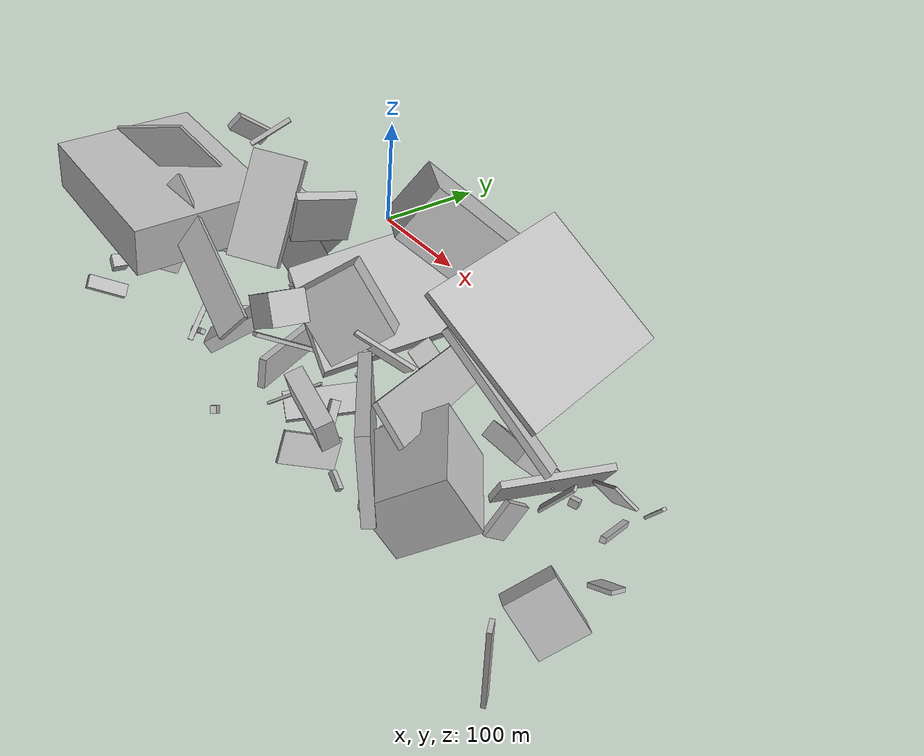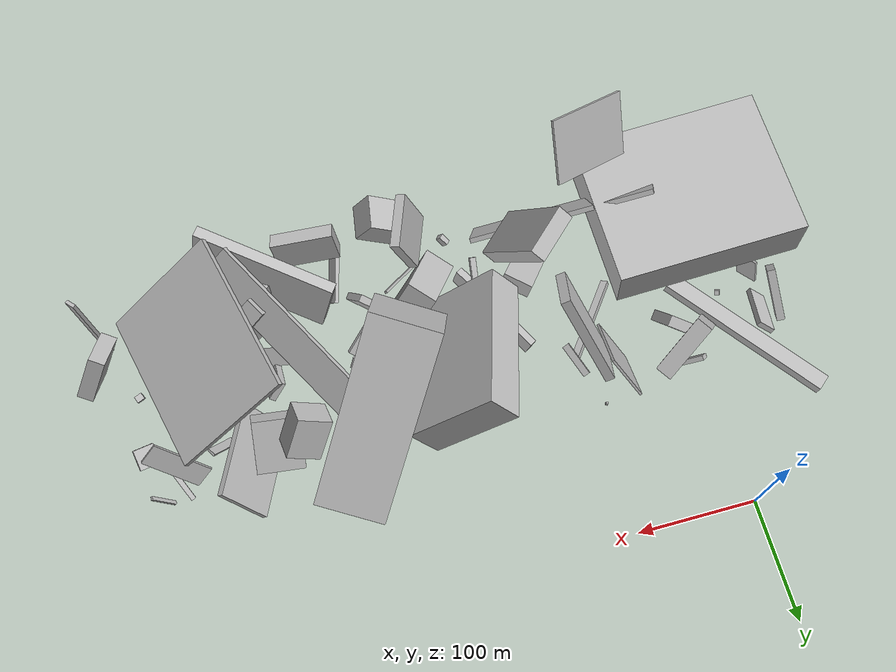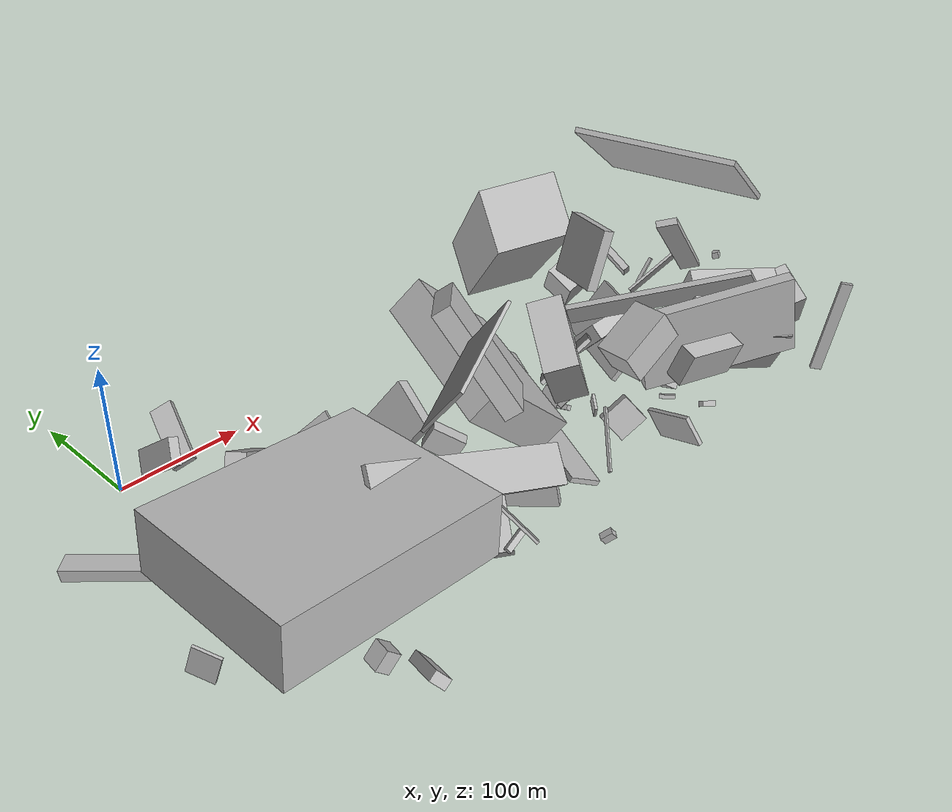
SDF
<sdf version="1.6">
 <world name="default">
  <model name="building_2">
   <static>0</static>
   <pose>387.47691240882835 -232.77425235303443 61.18344624210831 0.5333309283170092 0.0370196419224653 -0.6642562123319025</pose>
   <link name="link">
    <gravity>0</gravity>
    <pose>0 0 24.0 0 0 0</pose>
    <collision name="collision"><geometry><box><size>65 58 48</size></box></geometry></collision>
    <visual name="visual">
     <cast_shadows>0</cast_shadows>
     <geometry><box><size>65 58 48</size></box></geometry>
     <material>
      <script>
       <uri>model://HANNAS_wall/materials/scripts</uri>
       <uri>model://HANNAS_wall/materials/textures</uri>
       <name>vrc/HANNAS_wall</name>
      </script>
     </material>
    </visual>
   </link>
  </model>
  <model name="building_8">
   <static>0</static>
   <pose>345.8888367723806 -257.60691258758914 63.351803148838925 0.0902114704054743 -0.20962358882046353 -0.6115045855052065</pose>
   <link name="link">
    <gravity>0</gravity>
    <pose>0 0 31.0 0 0 0</pose>
    <collision name="collision"><geometry><box><size>113 9 62</size></box></geometry></collision>
    <visual name="visual">
     <cast_shadows>0</cast_shadows>
     <geometry><box><size>113 9 62</size></box></geometry>
     <material>
      <script>
       <uri>model://HANNAS_wall/materials/scripts</uri>
       <uri>model://HANNAS_wall/materials/textures</uri>
       <name>vrc/HANNAS_wall</name>
      </script>
     </material>
    </visual>
   </link>
  </model>
  <model name="building_9">
   <static>0</static>
   <pose>272.92304885389206 -124.40356035833818 121.81456329137009 0.6888763508246173 0.15438052560395862 2.6262330043297193</pose>
   <link name="link">
    <gravity>0</gravity>
    <pose>0 0 22.0 0 0 0</pose>
    <collision name="collision"><geometry><box><size>53 150 44</size></box></geometry></collision>
    <visual name="visual">
     <cast_shadows>0</cast_shadows>
     <geometry><box><size>53 150 44</size></box></geometry>
     <material>
      <script>
       <uri>model://HANNAS_wall/materials/scripts</uri>
       <uri>model://HANNAS_wall/materials/textures</uri>
       <name>vrc/HANNAS_wall</name>
      </script>
     </material>
    </visual>
   </link>
  </model>
  <model name="building_10">
   <static>0</static>
   <pose>331.76769654741463 -203.73249671786567 100.63112434152454 0.4676449679763307 -0.7483035096177024 -2.924746968950336</pose>
   <link name="link">
    <gravity>0</gravity>
    <pose>0 0 2.0 0 0 0</pose>
    <collision name="collision"><geometry><box><size>31 150 4</size></box></geometry></collision>
    <visual name="visual">
     <cast_shadows>0</cast_shadows>
     <geometry><box><size>31 150 4</size></box></geometry>
     <material>
      <script>
       <uri>model://HANNAS_wall/materials/scripts</uri>
       <uri>model://HANNAS_wall/materials/textures</uri>
       <name>vrc/HANNAS_wall</name>
      </script>
     </material>
    </visual>
   </link>
  </model>
  <model name="building_12">
   <static>0</static>
   <pose>159.26316855926473 -209.3865946689082 25.733481319758745 1.5601258000710014 -1.3874925622981942 2.1170049912540003</pose>
   <link name="link">
    <gravity>0</gravity>
    <pose>0 0 3.0 0 0 0</pose>
    <collision name="collision"><geometry><box><size>24 87 6</size></box></geometry></collision>
    <visual name="visual">
     <cast_shadows>0</cast_shadows>
     <geometry><box><size>24 87 6</size></box></geometry>
     <material>
      <script>
       <uri>model://HANNAS_wall/materials/scripts</uri>
       <uri>model://HANNAS_wall/materials/textures</uri>
       <name>vrc/HANNAS_wall</name>
      </script>
     </material>
    </visual>
   </link>
  </model>
  <model name="building_17">
   <static>0</static>
   <pose>193.70871926552255 -146.8150998121074 68.54899901740694 0.7487934997552398 -0.20692695145643705 1.2775613620409565</pose>
   <link name="link">
    <gravity>0</gravity>
    <pose>0 0 15.5 0 0 0</pose>
    <collision name="collision"><geometry><box><size>118 82 31</size></box></geometry></collision>
    <visual name="visual">
     <cast_shadows>0</cast_shadows>
     <geometry><box><size>118 82 31</size></box></geometry>
     <material>
      <script>
       <uri>model://HANNAS_wall/materials/scripts</uri>
       <uri>model://HANNAS_wall/materials/textures</uri>
       <name>vrc/HANNAS_wall</name>
      </script>
     </material>
    </visual>
   </link>
  </model>
  <model name="building_18">
   <static>0</static>
   <pose>104.79416934999136 -142.50146671710775 73.63118417303832 -2.4351214966518304 0.9421025663159311 2.1706856656243505</pose>
   <link name="link">
    <gravity>0</gravity>
    <pose>0 0 17.5 0 0 0</pose>
    <collision name="collision"><geometry><box><size>94 8 35</size></box></geometry></collision>
    <visual name="visual">
     <cast_shadows>0</cast_shadows>
     <geometry><box><size>94 8 35</size></box></geometry>
     <material>
      <script>
       <uri>model://HANNAS_wall/materials/scripts</uri>
       <uri>model://HANNAS_wall/materials/textures</uri>
       <name>vrc/HANNAS_wall</name>
      </script>
     </material>
    </visual>
   </link>
  </model>
  <model name="building_24">
   <static>0</static>
   <pose>-37.57711728249996 -135.03972867335196 31.527295860020246 1.0150946047471558 -1.465987361438521 2.8180148281602126</pose>
   <link name="link">
    <gravity>0</gravity>
    <pose>0 0 7.0 0 0 0</pose>
    <collision name="collision"><geometry><box><size>9 150 14</size></box></geometry></collision>
    <visual name="visual">
     <cast_shadows>0</cast_shadows>
     <geometry><box><size>9 150 14</size></box></geometry>
     <material>
      <script>
       <uri>model://HANNAS_wall/materials/scripts</uri>
       <uri>model://HANNAS_wall/materials/textures</uri>
       <name>vrc/HANNAS_wall</name>
      </script>
     </material>
    </visual>
   </link>
  </model>
  <model name="building_25">
   <static>0</static>
   <pose>22.72459754273749 -157.43585097709703 28.922503526487564 0.5013023883560919 0.5685327370787435 2.7574304789780997</pose>
   <link name="link">
    <gravity>0</gravity>
    <pose>0 0 12.0 0 0 0</pose>
    <collision name="collision"><geometry><box><size>40 9 24</size></box></geometry></collision>
    <visual name="visual">
     <cast_shadows>0</cast_shadows>
     <geometry><box><size>40 9 24</size></box></geometry>
     <material>
      <script>
       <uri>model://HANNAS_wall/materials/scripts</uri>
       <uri>model://HANNAS_wall/materials/textures</uri>
       <name>vrc/HANNAS_wall</name>
      </script>
     </material>
    </visual>
   </link>
  </model>
  <model name="building_27">
   <static>0</static>
   <pose>-22.34228868039463 -135.55675207586208 107.04717480337376 0.810987057291575 -0.8418935043621446 -2.793033945021948</pose>
   <link name="link">
    <gravity>0</gravity>
    <pose>0 0 20.0 0 0 0</pose>
    <collision name="collision"><geometry><box><size>4 14 40</size></box></geometry></collision>
    <visual name="visual">
     <cast_shadows>0</cast_shadows>
     <geometry><box><size>4 14 40</size></box></geometry>
     <material>
      <script>
       <uri>model://HANNAS_wall/materials/scripts</uri>
       <uri>model://HANNAS_wall/materials/textures</uri>
       <name>vrc/HANNAS_wall</name>
      </script>
     </material>
    </visual>
   </link>
  </model>
  <model name="building_34">
   <static>0</static>
   <pose>131.39393463632834 -229.6424532507173 36.64812475317592 -0.15618986755803943 -0.5925463786972044 0.9579126829627951</pose>
   <link name="link">
    <gravity>0</gravity>
    <pose>0 0 5.5 0 0 0</pose>
    <collision name="collision"><geometry><box><size>60 25 11</size></box></geometry></collision>
    <visual name="visual">
     <cast_shadows>0</cast_shadows>
     <geometry><box><size>60 25 11</size></box></geometry>
     <material>
      <script>
       <uri>model://HANNAS_wall/materials/scripts</uri>
       <uri>model://HANNAS_wall/materials/textures</uri>
       <name>vrc/HANNAS_wall</name>
      </script>
     </material>
    </visual>
   </link>
  </model>
  <model name="building_36">
   <static>0</static>
   <pose>342.2849401513516 -116.84686768812888 77.79540004967745 0.6037028357375143 -0.47658948393516054 -0.1619288230809903</pose>
   <link name="link">
    <gravity>0</gravity>
    <pose>0 0 17.5 0 0 0</pose>
    <collision name="collision"><geometry><box><size>27 23 35</size></box></geometry></collision>
    <visual name="visual">
     <cast_shadows>0</cast_shadows>
     <geometry><box><size>27 23 35</size></box></geometry>
     <material>
      <script>
       <uri>model://HANNAS_wall/materials/scripts</uri>
       <uri>model://HANNAS_wall/materials/textures</uri>
       <name>vrc/HANNAS_wall</name>
      </script>
     </material>
    </visual>
   </link>
  </model>
  <model name="building_38">
   <static>0</static>
   <pose>-1.960090226616316 -231.7199812472217 80.37061075252245 0.015684191024329906 -0.0663345719770131 -3.134092219686488</pose>
   <link name="link">
    <gravity>0</gravity>
    <pose>0 0 20.5 0 0 0</pose>
    <collision name="collision"><geometry><box><size>150 121 41</size></box></geometry></collision>
    <visual name="visual">
     <cast_shadows>0</cast_shadows>
     <geometry><box><size>150 121 41</size></box></geometry>
     <material>
      <script>
       <uri>model://HANNAS_wall/materials/scripts</uri>
       <uri>model://HANNAS_wall/materials/textures</uri>
       <name>vrc/HANNAS_wall</name>
      </script>
     </material>
    </visual>
   </link>
  </model>
  <model name="building_41">
   <static>0</static>
   <pose>168.27194507166797 -205.04260983572613 93.51818992525773 -2.7493861265278596 0.4067937762518701 -1.4010920545391723</pose>
   <link name="link">
    <gravity>0</gravity>
    <pose>0 0 2.5 0 0 0</pose>
    <collision name="collision"><geometry><box><size>9 9 5</size></box></geometry></collision>
    <visual name="visual">
     <cast_shadows>0</cast_shadows>
     <geometry><box><size>9 9 5</size></box></geometry>
     <material>
      <script>
       <uri>model://HANNAS_wall/materials/scripts</uri>
       <uri>model://HANNAS_wall/materials/textures</uri>
       <name>vrc/HANNAS_wall</name>
      </script>
     </material>
    </visual>
   </link>
  </model>
  <model name="building_42">
   <static>0</static>
   <pose>-31.48828384841086 -125.0776617594713 121.1426538898069 2.4626262361596534 0.3046084957295496 -0.15568096365559522</pose>
   <link name="link">
    <gravity>0</gravity>
    <pose>0 0 8.0 0 0 0</pose>
    <collision name="collision"><geometry><box><size>6 40 16</size></box></geometry></collision>
    <visual name="visual">
     <cast_shadows>0</cast_shadows>
     <geometry><box><size>6 40 16</size></box></geometry>
     <material>
      <script>
       <uri>model://HANNAS_wall/materials/scripts</uri>
       <uri>model://HANNAS_wall/materials/textures</uri>
       <name>vrc/HANNAS_wall</name>
      </script>
     </material>
    </visual>
   </link>
  </model>
  <model name="building_49">
   <static>0</static>
   <pose>397.4522518077086 -195.28624777534426 22.009670517232298 0.05215317821713353 0.6637624886092071 1.5866088578147248</pose>
   <link name="link">
    <gravity>0</gravity>
    <pose>0 0 14.0 0 0 0</pose>
    <collision name="collision"><geometry><box><size>23 4 28</size></box></geometry></collision>
    <visual name="visual">
     <cast_shadows>0</cast_shadows>
     <geometry><box><size>23 4 28</size></box></geometry>
     <material>
      <script>
       <uri>model://HANNAS_wall/materials/scripts</uri>
       <uri>model://HANNAS_wall/materials/textures</uri>
       <name>vrc/HANNAS_wall</name>
      </script>
     </material>
    </visual>
   </link>
  </model>
  <model name="building_50">
   <static>0</static>
   <pose>327.47390210426 -204.1207653415575 46.906829468472424 -2.1742264689622846 -0.3657768669206217 -1.7397316014653443</pose>
   <link name="link">
    <gravity>0</gravity>
    <pose>0 0 17.0 0 0 0</pose>
    <collision name="collision"><geometry><box><size>15 15 34</size></box></geometry></collision>
    <visual name="visual">
     <cast_shadows>0</cast_shadows>
     <geometry><box><size>15 15 34</size></box></geometry>
     <material>
      <script>
       <uri>model://HANNAS_wall/materials/scripts</uri>
       <uri>model://HANNAS_wall/materials/textures</uri>
       <name>vrc/HANNAS_wall</name>
      </script>
     </material>
    </visual>
   </link>
  </model>
  <model name="building_60">
   <static>0</static>
   <pose>167.26908917002646 -258.0750756751673 70.70222324377436 1.13854689465793 -0.6997056281073918 -1.4201563399658697</pose>
   <link name="link">
    <gravity>0</gravity>
    <pose>0 0 75.0 0 0 0</pose>
    <collision name="collision"><geometry><box><size>4 27 150</size></box></geometry></collision>
    <visual name="visual">
     <cast_shadows>0</cast_shadows>
     <geometry><box><size>4 27 150</size></box></geometry>
     <material>
      <script>
       <uri>model://HANNAS_wall/materials/scripts</uri>
       <uri>model://HANNAS_wall/materials/textures</uri>
       <name>vrc/HANNAS_wall</name>
      </script>
     </material>
    </visual>
   </link>
  </model>
  <model name="building_63">
   <static>0</static>
   <pose>-22.174445540451508 -171.01430209244054 31.660172704013842 2.822622449148777 -0.5895712544189775 -1.7814476683462557</pose>
   <link name="link">
    <gravity>0</gravity>
    <pose>0 0 2.5 0 0 0</pose>
    <collision name="collision"><geometry><box><size>4 4 5</size></box></geometry></collision>
    <visual name="visual">
     <cast_shadows>0</cast_shadows>
     <geometry><box><size>4 4 5</size></box></geometry>
     <material>
      <script>
       <uri>model://HANNAS_wall/materials/scripts</uri>
       <uri>model://HANNAS_wall/materials/textures</uri>
       <name>vrc/HANNAS_wall</name>
      </script>
     </material>
    </visual>
   </link>
  </model>
  <model name="building_69">
   <static>0</static>
   <pose>221.88614170895562 -218.63457839289413 164.89193119871373 -0.08787270058875903 0.2995396494822069 -0.38528496240203614</pose>
   <link name="link">
    <gravity>0</gravity>
    <pose>0 0 19.5 0 0 0</pose>
    <collision name="collision"><geometry><box><size>7 39 39</size></box></geometry></collision>
    <visual name="visual">
     <cast_shadows>0</cast_shadows>
     <geometry><box><size>7 39 39</size></box></geometry>
     <material>
      <script>
       <uri>model://HANNAS_wall/materials/scripts</uri>
       <uri>model://HANNAS_wall/materials/textures</uri>
       <name>vrc/HANNAS_wall</name>
      </script>
     </material>
    </visual>
   </link>
  </model>
  <model name="building_71">
   <static>0</static>
   <pose>111.42176545239275 -265.08818343875856 38.49239945524962 -1.0039224332705654 0.7663779388554413 -1.0691694871122288</pose>
   <link name="link">
    <gravity>0</gravity>
    <pose>0 0 8.0 0 0 0</pose>
    <collision name="collision"><geometry><box><size>4 4 16</size></box></geometry></collision>
    <visual name="visual">
     <cast_shadows>0</cast_shadows>
     <geometry><box><size>4 4 16</size></box></geometry>
     <material>
      <script>
       <uri>model://HANNAS_wall/materials/scripts</uri>
       <uri>model://HANNAS_wall/materials/textures</uri>
       <name>vrc/HANNAS_wall</name>
      </script>
     </material>
    </visual>
   </link>
  </model>
  <model name="building_75">
   <static>0</static>
   <pose>443.7160074823151 -135.1759026916273 37.292477291710306 2.67357636729321 -0.012909500028442657 0.4058444404686126</pose>
   <link name="link">
    <gravity>0</gravity>
    <pose>0 0 2.0 0 0 0</pose>
    <collision name="collision"><geometry><box><size>4 49 4</size></box></geometry></collision>
    <visual name="visual">
     <cast_shadows>0</cast_shadows>
     <geometry><box><size>4 49 4</size></box></geometry>
     <material>
      <script>
       <uri>model://HANNAS_wall/materials/scripts</uri>
       <uri>model://HANNAS_wall/materials/textures</uri>
       <name>vrc/HANNAS_wall</name>
      </script>
     </material>
    </visual>
   </link>
  </model>
  <model name="building_77">
   <static>0</static>
   <pose>218.34333478523672 -219.73315390792357 88.17902149409531 0.9665078776323731 0.29083932970673176 2.379663249198045</pose>
   <link name="link">
    <gravity>0</gravity>
    <pose>0 0 26.0 0 0 0</pose>
    <collision name="collision"><geometry><box><size>24 57 52</size></box></geometry></collision>
    <visual name="visual">
     <cast_shadows>0</cast_shadows>
     <geometry><box><size>24 57 52</size></box></geometry>
     <material>
      <script>
       <uri>model://HANNAS_wall/materials/scripts</uri>
       <uri>model://HANNAS_wall/materials/textures</uri>
       <name>vrc/HANNAS_wall</name>
      </script>
     </material>
    </visual>
   </link>
  </model>
  <model name="building_80">
   <static>0</static>
   <pose>421.7229338411373 -177.69488870066 88.7013421312717 0.41786533059477865 0.7745598679927138 -2.270779519255045</pose>
   <link name="link">
    <gravity>0</gravity>
    <pose>0 0 54.0 0 0 0</pose>
    <collision name="collision"><geometry><box><size>5 15 108</size></box></geometry></collision>
    <visual name="visual">
     <cast_shadows>0</cast_shadows>
     <geometry><box><size>5 15 108</size></box></geometry>
     <material>
      <script>
       <uri>model://HANNAS_wall/materials/scripts</uri>
       <uri>model://HANNAS_wall/materials/textures</uri>
       <name>vrc/HANNAS_wall</name>
      </script>
     </material>
    </visual>
   </link>
  </model>
  <model name="building_81">
   <static>0</static>
   <pose>288.2053624205983 -156.45161320103085 7.910044849010731 2.1827844237657494 0.2194636450719218 1.6657236597813896</pose>
   <link name="link">
    <gravity>0</gravity>
    <pose>0 0 2.5 0 0 0</pose>
    <collision name="collision"><geometry><box><size>21 4 5</size></box></geometry></collision>
    <visual name="visual">
     <cast_shadows>0</cast_shadows>
     <geometry><box><size>21 4 5</size></box></geometry>
     <material>
      <script>
       <uri>model://HANNAS_wall/materials/scripts</uri>
       <uri>model://HANNAS_wall/materials/textures</uri>
       <name>vrc/HANNAS_wall</name>
      </script>
     </material>
    </visual>
   </link>
  </model>
  <model name="building_82">
   <static>0</static>
   <pose>321.23710547645885 -265.1467862020795 45.12495329195275 1.0574556135148692 0.3545254835614652 -0.18751364566198583</pose>
   <link name="link">
    <gravity>0</gravity>
    <pose>0 0 2.0 0 0 0</pose>
    <collision name="collision"><geometry><box><size>14 4 4</size></box></geometry></collision>
    <visual name="visual">
     <cast_shadows>0</cast_shadows>
     <geometry><box><size>14 4 4</size></box></geometry>
     <material>
      <script>
       <uri>model://HANNAS_wall/materials/scripts</uri>
       <uri>model://HANNAS_wall/materials/textures</uri>
       <name>vrc/HANNAS_wall</name>
      </script>
     </material>
    </visual>
   </link>
  </model>
  <model name="building_84">
   <static>0</static>
   <pose>395.63360109111153 -141.14793499398695 47.23222797750052 2.530589892871291 0.087012865018073 -1.9902747319896272</pose>
   <link name="link">
    <gravity>0</gravity>
    <pose>0 0 25.5 0 0 0</pose>
    <collision name="collision"><geometry><box><size>78 5 51</size></box></geometry></collision>
    <visual name="visual">
     <cast_shadows>0</cast_shadows>
     <geometry><box><size>78 5 51</size></box></geometry>
     <material>
      <script>
       <uri>model://HANNAS_wall/materials/scripts</uri>
       <uri>model://HANNAS_wall/materials/textures</uri>
       <name>vrc/HANNAS_wall</name>
      </script>
     </material>
    </visual>
   </link>
  </model>
  <model name="building_85">
   <static>0</static>
   <pose>340.7222191363916 -138.08702022458468 34.962572364767254 1.3845205502085778 0.8062048241814006 1.3470299427318404</pose>
   <link name="link">
    <gravity>0</gravity>
    <pose>0 0 19.5 0 0 0</pose>
    <collision name="collision"><geometry><box><size>47 13 39</size></box></geometry></collision>
    <visual name="visual">
     <cast_shadows>0</cast_shadows>
     <geometry><box><size>47 13 39</size></box></geometry>
     <material>
      <script>
       <uri>model://HANNAS_wall/materials/scripts</uri>
       <uri>model://HANNAS_wall/materials/textures</uri>
       <name>vrc/HANNAS_wall</name>
      </script>
     </material>
    </visual>
   </link>
  </model>
  <model name="building_87">
   <static>0</static>
   <pose>16.831528696985423 -122.90462100244483 19.16558763932729 2.6622513081844046 0.5733696691381087 -0.21500211795854413</pose>
   <link name="link">
    <gravity>0</gravity>
    <pose>0 0 5.5 0 0 0</pose>
    <collision name="collision"><geometry><box><size>24 4 11</size></box></geometry></collision>
    <visual name="visual">
     <cast_shadows>0</cast_shadows>
     <geometry><box><size>24 4 11</size></box></geometry>
     <material>
      <script>
       <uri>model://HANNAS_wall/materials/scripts</uri>
       <uri>model://HANNAS_wall/materials/textures</uri>
       <name>vrc/HANNAS_wall</name>
      </script>
     </material>
    </visual>
   </link>
  </model>
  <model name="building_95">
   <static>0</static>
   <pose>428.1892858275454 -160.1524421746071 153.7626610274536 0.01975206867858945 -0.9692141486206344 0.22134320518665293</pose>
   <link name="link">
    <gravity>0</gravity>
    <pose>0 0 48.5 0 0 0</pose>
    <collision name="collision"><geometry><box><size>4 120 97</size></box></geometry></collision>
    <visual name="visual">
     <cast_shadows>0</cast_shadows>
     <geometry><box><size>4 120 97</size></box></geometry>
     <material>
      <script>
       <uri>model://HANNAS_wall/materials/scripts</uri>
       <uri>model://HANNAS_wall/materials/textures</uri>
       <name>vrc/HANNAS_wall</name>
      </script>
     </material>
    </visual>
   </link>
  </model>
  <model name="building_98">
   <static>0</static>
   <pose>225.94937959975235 -215.31467691379476 22.098855530218763 0.4049993431461293 -0.05054009880012669 1.1503244073899934</pose>
   <link name="link">
    <gravity>0</gravity>
    <pose>0 0 2.0 0 0 0</pose>
    <collision name="collision"><geometry><box><size>61 24 4</size></box></geometry></collision>
    <visual name="visual">
     <cast_shadows>0</cast_shadows>
     <geometry><box><size>61 24 4</size></box></geometry>
     <material>
      <script>
       <uri>model://HANNAS_wall/materials/scripts</uri>
       <uri>model://HANNAS_wall/materials/textures</uri>
       <name>vrc/HANNAS_wall</name>
      </script>
     </material>
    </visual>
   </link>
  </model>
  <model name="building_101">
   <static>0</static>
   <pose>473.2413476494226 -238.4024734070858 74.48707761750461 2.5864711555687516 0.329810121986138 2.6045981276665637</pose>
   <link name="link">
    <gravity>0</gravity>
    <pose>0 0 21.0 0 0 0</pose>
    <collision name="collision"><geometry><box><size>13 34 42</size></box></geometry></collision>
    <visual name="visual">
     <cast_shadows>0</cast_shadows>
     <geometry><box><size>13 34 42</size></box></geometry>
     <material>
      <script>
       <uri>model://HANNAS_wall/materials/scripts</uri>
       <uri>model://HANNAS_wall/materials/textures</uri>
       <name>vrc/HANNAS_wall</name>
      </script>
     </material>
    </visual>
   </link>
  </model>
  <model name="building_102">
   <static>0</static>
   <pose>105.26045947767751 -148.62505891186706 23.715271015853435 2.725007895870212 -0.9653478053413664 0.7234342355775549</pose>
   <link name="link">
    <gravity>0</gravity>
    <pose>0 0 3.0 0 0 0</pose>
    <collision name="collision"><geometry><box><size>2 30 6</size></box></geometry></collision>
    <visual name="visual">
     <cast_shadows>0</cast_shadows>
     <geometry><box><size>2 30 6</size></box></geometry>
     <material>
      <script>
       <uri>model://HANNAS_wall/materials/scripts</uri>
       <uri>model://HANNAS_wall/materials/textures</uri>
       <name>vrc/HANNAS_wall</name>
      </script>
     </material>
    </visual>
   </link>
  </model>
  <model name="building_113">
   <static>0</static>
   <pose>448.96595244218247 -183.34465112272025 92.74667042324236 -3.079506929959963 0.2713723657622138 1.9674144339486592</pose>
   <link name="link">
    <gravity>0</gravity>
    <pose>0 0 2.5 0 0 0</pose>
    <collision name="collision"><geometry><box><size>5 6 5</size></box></geometry></collision>
    <visual name="visual">
     <cast_shadows>0</cast_shadows>
     <geometry><box><size>5 6 5</size></box></geometry>
     <material>
      <script>
       <uri>model://HANNAS_wall/materials/scripts</uri>
       <uri>model://HANNAS_wall/materials/textures</uri>
       <name>vrc/HANNAS_wall</name>
      </script>
     </material>
    </visual>
   </link>
  </model>
  <model name="building_119">
   <static>0</static>
   <pose>325.0591145784131 -275.9919709436527 91.49288809130385 1.0634102224494244 -1.2493166227348027 -1.2316329845746534</pose>
   <link name="link">
    <gravity>0</gravity>
    <pose>0 0 25.0 0 0 0</pose>
    <collision name="collision"><geometry><box><size>25 13 50</size></box></geometry></collision>
    <visual name="visual">
     <cast_shadows>0</cast_shadows>
     <geometry><box><size>25 13 50</size></box></geometry>
     <material>
      <script>
       <uri>model://HANNAS_wall/materials/scripts</uri>
       <uri>model://HANNAS_wall/materials/textures</uri>
       <name>vrc/HANNAS_wall</name>
      </script>
     </material>
    </visual>
   </link>
  </model>
  <model name="building_121">
   <static>0</static>
   <pose>487.9071662187221 -272.7819934719903 44.01164160018055 -1.5911947816525491 -0.14142952362695652 2.279824540560024</pose>
   <link name="link">
    <gravity>0</gravity>
    <pose>0 0 1.5 0 0 0</pose>
    <collision name="collision"><geometry><box><size>9 80 3</size></box></geometry></collision>
    <visual name="visual">
     <cast_shadows>0</cast_shadows>
     <geometry><box><size>9 80 3</size></box></geometry>
     <material>
      <script>
       <uri>model://HANNAS_wall/materials/scripts</uri>
       <uri>model://HANNAS_wall/materials/textures</uri>
       <name>vrc/HANNAS_wall</name>
      </script>
     </material>
    </visual>
   </link>
  </model>
  <model name="building_122">
   <static>0</static>
   <pose>127.32698493188889 -275.626496764226 42.28739907966925 -0.45823232341590064 -0.7391490582932928 -0.4761202570918091</pose>
   <link name="link">
    <gravity>0</gravity>
    <pose>0 0 17.0 0 0 0</pose>
    <collision name="collision"><geometry><box><size>2 4 34</size></box></geometry></collision>
    <visual name="visual">
     <cast_shadows>0</cast_shadows>
     <geometry><box><size>2 4 34</size></box></geometry>
     <material>
      <script>
       <uri>model://HANNAS_wall/materials/scripts</uri>
       <uri>model://HANNAS_wall/materials/textures</uri>
       <name>vrc/HANNAS_wall</name>
      </script>
     </material>
    </visual>
   </link>
  </model>
  <model name="building_123">
   <static>0</static>
   <pose>21.69025557474577 -128.96024984870976 48.436848311281835 0.5790150323791154 0.09027009642898208 2.1715783264211623</pose>
   <link name="link">
    <gravity>0</gravity>
    <pose>0 0 17.0 0 0 0</pose>
    <collision name="collision"><geometry><box><size>14 51 34</size></box></geometry></collision>
    <visual name="visual">
     <cast_shadows>0</cast_shadows>
     <geometry><box><size>14 51 34</size></box></geometry>
     <material>
      <script>
       <uri>model://HANNAS_wall/materials/scripts</uri>
       <uri>model://HANNAS_wall/materials/textures</uri>
       <name>vrc/HANNAS_wall</name>
      </script>
     </material>
    </visual>
   </link>
  </model>
  <model name="building_126">
   <static>0</static>
   <pose>253.69647318697585 -260.77163492262105 141.5695749614282 -2.9921419818418706 -0.9732517307506786 2.8601876547169205</pose>
   <link name="link">
    <gravity>0</gravity>
    <pose>0 0 19.5 0 0 0</pose>
    <collision name="collision"><geometry><box><size>23 26 39</size></box></geometry></collision>
    <visual name="visual">
     <cast_shadows>0</cast_shadows>
     <geometry><box><size>23 26 39</size></box></geometry>
     <material>
      <script>
       <uri>model://HANNAS_wall/materials/scripts</uri>
       <uri>model://HANNAS_wall/materials/textures</uri>
       <name>vrc/HANNAS_wall</name>
      </script>
     </material>
    </visual>
   </link>
  </model>
  <model name="building_127">
   <static>0</static>
   <pose>20.535142261536176 -282.84049435168845 28.132731163649396 -1.0018934937835333 0.6753738227414487 3.13725863230075</pose>
   <link name="link">
    <gravity>0</gravity>
    <pose>0 0 16.5 0 0 0</pose>
    <collision name="collision"><geometry><box><size>7 11 33</size></box></geometry></collision>
    <visual name="visual">
     <cast_shadows>0</cast_shadows>
     <geometry><box><size>7 11 33</size></box></geometry>
     <material>
      <script>
       <uri>model://HANNAS_wall/materials/scripts</uri>
       <uri>model://HANNAS_wall/materials/textures</uri>
       <name>vrc/HANNAS_wall</name>
      </script>
     </material>
    </visual>
   </link>
  </model>
  <model name="building_134">
   <static>0</static>
   <pose>270.49241170340866 -153.419675870812 21.125657757432847 1.9299864853041657 0.17871208988294976 0.3233397785912341</pose>
   <link name="link">
    <gravity>0</gravity>
    <pose>0 0 7.5 0 0 0</pose>
    <collision name="collision"><geometry><box><size>2 28 15</size></box></geometry></collision>
    <visual name="visual">
     <cast_shadows>0</cast_shadows>
     <geometry><box><size>2 28 15</size></box></geometry>
     <material>
      <script>
       <uri>model://HANNAS_wall/materials/scripts</uri>
       <uri>model://HANNAS_wall/materials/textures</uri>
       <name>vrc/HANNAS_wall</name>
      </script>
     </material>
    </visual>
   </link>
  </model>
  <model name="building_135">
   <static>0</static>
   <pose>2.1729624693273326 -278.5409866026418 39.781427924443875 0.8448790920668706 -0.046396340136662564 -1.7549249245397394</pose>
   <link name="link">
    <gravity>0</gravity>
    <pose>0 0 5.5 0 0 0</pose>
    <collision name="collision"><geometry><box><size>12 13 11</size></box></geometry></collision>
    <visual name="visual">
     <cast_shadows>0</cast_shadows>
     <geometry><box><size>12 13 11</size></box></geometry>
     <material>
      <script>
       <uri>model://HANNAS_wall/materials/scripts</uri>
       <uri>model://HANNAS_wall/materials/textures</uri>
       <name>vrc/HANNAS_wall</name>
      </script>
     </material>
    </visual>
   </link>
  </model>
  <model name="building_136">
   <static>0</static>
   <pose>249.75457526696633 -203.0998874242502 60.884712650924754 -2.757125261285556 -0.5292760175158117 1.5681453115063062</pose>
   <link name="link">
    <gravity>0</gravity>
    <pose>0 0 8.5 0 0 0</pose>
    <collision name="collision"><geometry><box><size>4 2 17</size></box></geometry></collision>
    <visual name="visual">
     <cast_shadows>0</cast_shadows>
     <geometry><box><size>4 2 17</size></box></geometry>
     <material>
      <script>
       <uri>model://HANNAS_wall/materials/scripts</uri>
       <uri>model://HANNAS_wall/materials/textures</uri>
       <name>vrc/HANNAS_wall</name>
      </script>
     </material>
    </visual>
   </link>
  </model>
  <model name="building_140">
   <static>0</static>
   <pose>401.78367494995615 -144.9783392080283 36.294513860624335 -1.4177043175485189 0.8885837018432915 -2.452356381947958</pose>
   <link name="link">
    <gravity>0</gravity>
    <pose>0 0 3.5 0 0 0</pose>
    <collision name="collision"><geometry><box><size>32 2 7</size></box></geometry></collision>
    <visual name="visual">
     <cast_shadows>0</cast_shadows>
     <geometry><box><size>32 2 7</size></box></geometry>
     <material>
      <script>
       <uri>model://HANNAS_wall/materials/scripts</uri>
       <uri>model://HANNAS_wall/materials/textures</uri>
       <name>vrc/HANNAS_wall</name>
      </script>
     </material>
    </visual>
   </link>
  </model>
  <model name="building_141">
   <static>0</static>
   <pose>454.1254417280172 -112.21951859307974 48.384380531670715 -1.7606270565585909 0.970321433322264 2.9586877170397803</pose>
   <link name="link">
    <gravity>0</gravity>
    <pose>0 0 1.5 0 0 0</pose>
    <collision name="collision"><geometry><box><size>24 2 3</size></box></geometry></collision>
    <visual name="visual">
     <cast_shadows>0</cast_shadows>
     <geometry><box><size>24 2 3</size></box></geometry>
     <material>
      <script>
       <uri>model://HANNAS_wall/materials/scripts</uri>
       <uri>model://HANNAS_wall/materials/textures</uri>
       <name>vrc/HANNAS_wall</name>
      </script>
     </material>
    </visual>
   </link>
  </model>
  <model name="building_143">
   <static>0</static>
   <pose>-55.91840956250528 -200.09888016038835 14.667977800158074 -1.2514545249838882 -0.06247194213485768 0.5104543069115338</pose>
   <link name="link">
    <gravity>0</gravity>
    <pose>0 0 9.5 0 0 0</pose>
    <collision name="collision"><geometry><box><size>2 24 19</size></box></geometry></collision>
    <visual name="visual">
     <cast_shadows>0</cast_shadows>
     <geometry><box><size>2 24 19</size></box></geometry>
     <material>
      <script>
       <uri>model://HANNAS_wall/materials/scripts</uri>
       <uri>model://HANNAS_wall/materials/textures</uri>
       <name>vrc/HANNAS_wall</name>
      </script>
     </material>
    </visual>
   </link>
  </model>
  <model name="building_149">
   <static>0</static>
   <pose>242.3491094430285 -147.1032205382756 44.03039620819918 -0.8718108513054456 -0.7074139200518826 -0.710239199933554</pose>
   <link name="link">
    <gravity>0</gravity>
    <pose>0 0 9.5 0 0 0</pose>
    <collision name="collision"><geometry><box><size>30 15 19</size></box></geometry></collision>
    <visual name="visual">
     <cast_shadows>0</cast_shadows>
     <geometry><box><size>30 15 19</size></box></geometry>
     <material>
      <script>
       <uri>model://HANNAS_wall/materials/scripts</uri>
       <uri>model://HANNAS_wall/materials/textures</uri>
       <name>vrc/HANNAS_wall</name>
      </script>
     </material>
    </visual>
   </link>
  </model>
  <model name="building_150">
   <static>0</static>
   <pose>179.71337614727588 -143.30520749195335 26.220631516808346 1.587939628207579 0.48789505179798587 -0.8434285793367002</pose>
   <link name="link">
    <gravity>0</gravity>
    <pose>0 0 5.0 0 0 0</pose>
    <collision name="collision"><geometry><box><size>26 19 10</size></box></geometry></collision>
    <visual name="visual">
     <cast_shadows>0</cast_shadows>
     <geometry><box><size>26 19 10</size></box></geometry>
     <material>
      <script>
       <uri>model://HANNAS_wall/materials/scripts</uri>
       <uri>model://HANNAS_wall/materials/textures</uri>
       <name>vrc/HANNAS_wall</name>
      </script>
     </material>
    </visual>
   </link>
  </model>
  <model name="building_155">
   <static>0</static>
   <pose>444.0103553299195 -131.00407071848198 55.492164099491994 0.8308347144937136 0.5632677354041924 -1.5587398317129548</pose>
   <link name="link">
    <gravity>0</gravity>
    <pose>0 0 9.5 0 0 0</pose>
    <collision name="collision"><geometry><box><size>2 50 19</size></box></geometry></collision>
    <visual name="visual">
     <cast_shadows>0</cast_shadows>
     <geometry><box><size>2 50 19</size></box></geometry>
     <material>
      <script>
       <uri>model://HANNAS_wall/materials/scripts</uri>
       <uri>model://HANNAS_wall/materials/textures</uri>
       <name>vrc/HANNAS_wall</name>
      </script>
     </material>
    </visual>
   </link>
  </model>
  <model name="building_158">
   <static>0</static>
   <pose>285.6539187356505 -193.77721224172976 23.36665825591281 -0.4672708861576879 0.058141791447369945 2.4424721387723607</pose>
   <link name="link">
    <gravity>0</gravity>
    <pose>0 0 6.0 0 0 0</pose>
    <collision name="collision"><geometry><box><size>2 13 12</size></box></geometry></collision>
    <visual name="visual">
     <cast_shadows>0</cast_shadows>
     <geometry><box><size>2 13 12</size></box></geometry>
     <material>
      <script>
       <uri>model://HANNAS_wall/materials/scripts</uri>
       <uri>model://HANNAS_wall/materials/textures</uri>
       <name>vrc/HANNAS_wall</name>
      </script>
     </material>
    </visual>
   </link>
  </model>
  <model name="building_160">
   <static>0</static>
   <pose>344.31679184384643 -159.313988807477 112.51412219841835 0.8401439792069335 -0.5502766419196381 1.6066540464059944</pose>
   <link name="link">
    <gravity>0</gravity>
    <pose>0 0 2.5 0 0 0</pose>
    <collision name="collision"><geometry><box><size>23 16 5</size></box></geometry></collision>
    <visual name="visual">
     <cast_shadows>0</cast_shadows>
     <geometry><box><size>23 16 5</size></box></geometry>
     <material>
      <script>
       <uri>model://HANNAS_wall/materials/scripts</uri>
       <uri>model://HANNAS_wall/materials/textures</uri>
       <name>vrc/HANNAS_wall</name>
      </script>
     </material>
    </visual>
   </link>
  </model>
  <model name="building_163">
   <static>0</static>
   <pose>233.96767428564794 -245.96523434152724 48.65089898845738 -0.7902787871915562 -0.5687551615173451 0.7877947160375002</pose>
   <link name="link">
    <gravity>0</gravity>
    <pose>0 0 1.0 0 0 0</pose>
    <collision name="collision"><geometry><box><size>47 2 2</size></box></geometry></collision>
    <visual name="visual">
     <cast_shadows>0</cast_shadows>
     <geometry><box><size>47 2 2</size></box></geometry>
     <material>
      <script>
       <uri>model://HANNAS_wall/materials/scripts</uri>
       <uri>model://HANNAS_wall/materials/textures</uri>
       <name>vrc/HANNAS_wall</name>
      </script>
     </material>
    </visual>
   </link>
  </model>
  <model name="building_164">
   <static>0</static>
   <pose>266.84790662218296 -232.47430246435846 45.53664274679354 1.2132807416614715 0.8273306354210694 -0.9285295332835309</pose>
   <link name="link">
    <gravity>0</gravity>
    <pose>0 0 3.0 0 0 0</pose>
    <collision name="collision"><geometry><box><size>23 23 6</size></box></geometry></collision>
    <visual name="visual">
     <cast_shadows>0</cast_shadows>
     <geometry><box><size>23 23 6</size></box></geometry>
     <material>
      <script>
       <uri>model://HANNAS_wall/materials/scripts</uri>
       <uri>model://HANNAS_wall/materials/textures</uri>
       <name>vrc/HANNAS_wall</name>
      </script>
     </material>
    </visual>
   </link>
  </model>
  <model name="building_166">
   <static>0</static>
   <pose>172.99865776982838 -209.34878873062178 40.67989425691503 -1.2720374059876636 -0.5606887265631333 -1.6824108723853832</pose>
   <link name="link">
    <gravity>0</gravity>
    <pose>0 0 2.5 0 0 0</pose>
    <collision name="collision"><geometry><box><size>80 3 5</size></box></geometry></collision>
    <visual name="visual">
     <cast_shadows>0</cast_shadows>
     <geometry><box><size>80 3 5</size></box></geometry>
     <material>
      <script>
       <uri>model://HANNAS_wall/materials/scripts</uri>
       <uri>model://HANNAS_wall/materials/textures</uri>
       <name>vrc/HANNAS_wall</name>
      </script>
     </material>
    </visual>
   </link>
  </model>
  <model name="building_167">
   <static>0</static>
   <pose>106.79536654989664 -151.63107504449704 14.422586537151673 -1.8491413587461423 1.1816394086132052 2.238114596656915</pose>
   <link name="link">
    <gravity>0</gravity>
    <pose>0 0 40.0 0 0 0</pose>
    <collision name="collision"><geometry><box><size>5 6 80</size></box></geometry></collision>
    <visual name="visual">
     <cast_shadows>0</cast_shadows>
     <geometry><box><size>5 6 80</size></box></geometry>
     <material>
      <script>
       <uri>model://HANNAS_wall/materials/scripts</uri>
       <uri>model://HANNAS_wall/materials/textures</uri>
       <name>vrc/HANNAS_wall</name>
      </script>
     </material>
    </visual>
   </link>
  </model>
  <model name="building_169">
   <static>0</static>
   <pose>-25.535252665646752 -230.0724962979877 21.31059937982792 -3.0070625764892056 1.0018729481548756 -1.455651753911934</pose>
   <link name="link">
    <gravity>0</gravity>
    <pose>0 0 9.5 0 0 0</pose>
    <collision name="collision"><geometry><box><size>19 17 19</size></box></geometry></collision>
    <visual name="visual">
     <cast_shadows>0</cast_shadows>
     <geometry><box><size>19 17 19</size></box></geometry>
     <material>
      <script>
       <uri>model://HANNAS_wall/materials/scripts</uri>
       <uri>model://HANNAS_wall/materials/textures</uri>
       <name>vrc/HANNAS_wall</name>
      </script>
     </material>
    </visual>
   </link>
  </model>
  <model name="building_174">
   <static>0</static>
   <pose>183.58991824980004 -285.27716787295753 20.55806248404546 -2.4726027844956495 0.1395409561886793 -2.268151660775116</pose>
   <link name="link">
    <gravity>0</gravity>
    <pose>0 0 3.0 0 0 0</pose>
    <collision name="collision"><geometry><box><size>5 9 6</size></box></geometry></collision>
    <visual name="visual">
     <cast_shadows>0</cast_shadows>
     <geometry><box><size>5 9 6</size></box></geometry>
     <material>
      <script>
       <uri>model://HANNAS_wall/materials/scripts</uri>
       <uri>model://HANNAS_wall/materials/textures</uri>
       <name>vrc/HANNAS_wall</name>
      </script>
     </material>
    </visual>
   </link>
  </model>
  <model name="building_178">
   <static>0</static>
   <pose>26.323804423423688 -217.3810455680932 33.29821702405155 0.6937340195809691 -0.08562950694571547 0.8037607329078734</pose>
   <link name="link">
    <gravity>0</gravity>
    <pose>0 0 22.0 0 0 0</pose>
    <collision name="collision"><geometry><box><size>4 4 44</size></box></geometry></collision>
    <visual name="visual">
     <cast_shadows>0</cast_shadows>
     <geometry><box><size>4 4 44</size></box></geometry>
     <material>
      <script>
       <uri>model://HANNAS_wall/materials/scripts</uri>
       <uri>model://HANNAS_wall/materials/textures</uri>
       <name>vrc/HANNAS_wall</name>
      </script>
     </material>
    </visual>
   </link>
  </model>
  <model name="building_184">
   <static>0</static>
   <pose>355.90097617662184 -205.1390637926549 7.170086494798677 -1.3598343931076584 1.197664758622512 -2.359458292735773</pose>
   <link name="link">
    <gravity>0</gravity>
    <pose>0 0 6.0 0 0 0</pose>
    <collision name="collision"><geometry><box><size>3 5 12</size></box></geometry></collision>
    <visual name="visual">
     <cast_shadows>0</cast_shadows>
     <geometry><box><size>3 5 12</size></box></geometry>
     <material>
      <script>
       <uri>model://HANNAS_wall/materials/scripts</uri>
       <uri>model://HANNAS_wall/materials/textures</uri>
       <name>vrc/HANNAS_wall</name>
      </script>
     </material>
    </visual>
   </link>
  </model>
  <model name="building_185">
   <static>0</static>
   <pose>273.17165811447455 -173.96904101688446 67.21574246898348 -0.9518723592597038 0.7001745876422387 2.6798783996912614</pose>
   <link name="link">
    <gravity>0</gravity>
    <pose>0 0 24.0 0 0 0</pose>
    <collision name="collision"><geometry><box><size>45 3 48</size></box></geometry></collision>
    <visual name="visual">
     <cast_shadows>0</cast_shadows>
     <geometry><box><size>45 3 48</size></box></geometry>
     <material>
      <script>
       <uri>model://HANNAS_wall/materials/scripts</uri>
       <uri>model://HANNAS_wall/materials/textures</uri>
       <name>vrc/HANNAS_wall</name>
      </script>
     </material>
    </visual>
   </link>
  </model>
  <model name="building_191">
   <static>0</static>
   <pose>136.1926415844536 -208.37905899793802 141.24372290188083 0.24296059765525557 -0.9722082985347928 2.110299030724764</pose>
   <link name="link">
    <gravity>0</gravity>
    <pose>0 0 6.5 0 0 0</pose>
    <collision name="collision"><geometry><box><size>80 39 13</size></box></geometry></collision>
    <visual name="visual">
     <cast_shadows>0</cast_shadows>
     <geometry><box><size>80 39 13</size></box></geometry>
     <material>
      <script>
       <uri>model://HANNAS_wall/materials/scripts</uri>
       <uri>model://HANNAS_wall/materials/textures</uri>
       <name>vrc/HANNAS_wall</name>
      </script>
     </material>
    </visual>
   </link>
  </model>
  <model name="building_192">
   <static>0</static>
   <pose>81.0967340495517 -243.7318768207354 162.31303393179533 -0.3483849333243904 -0.5673809962449015 2.1307860348737457</pose>
   <link name="link">
    <gravity>0</gravity>
    <pose>0 0 24.5 0 0 0</pose>
    <collision name="collision"><geometry><box><size>2 67 49</size></box></geometry></collision>
    <visual name="visual">
     <cast_shadows>0</cast_shadows>
     <geometry><box><size>2 67 49</size></box></geometry>
     <material>
      <script>
       <uri>model://HANNAS_wall/materials/scripts</uri>
       <uri>model://HANNAS_wall/materials/textures</uri>
       <name>vrc/HANNAS_wall</name>
      </script>
     </material>
    </visual>
   </link>
  </model>
  <model name="building_195">
   <static>0</static>
   <pose>70.37300696923751 -118.53809921642103 35.284047741672055 -0.6862341688772314 -0.4410344618360605 -2.9253401507111816</pose>
   <link name="link">
    <gravity>0</gravity>
    <pose>0 0 21.5 0 0 0</pose>
    <collision name="collision"><geometry><box><size>2 53 43</size></box></geometry></collision>
    <visual name="visual">
     <cast_shadows>0</cast_shadows>
     <geometry><box><size>2 53 43</size></box></geometry>
     <material>
      <script>
       <uri>model://HANNAS_wall/materials/scripts</uri>
       <uri>model://HANNAS_wall/materials/textures</uri>
       <name>vrc/HANNAS_wall</name>
      </script>
     </material>
    </visual>
   </link>
  </model>
  <model name="building_196">
   <static>0</static>
   <pose>467.42826213541775 -168.73289843238356 23.881377411078287 2.574496192577738 -1.0085879637001258 2.331746802423386</pose>
   <link name="link">
    <gravity>0</gravity>
    <pose>0 0 8.5 0 0 0</pose>
    <collision name="collision"><geometry><box><size>3 17 17</size></box></geometry></collision>
    <visual name="visual">
     <cast_shadows>0</cast_shadows>
     <geometry><box><size>3 17 17</size></box></geometry>
     <material>
      <script>
       <uri>model://HANNAS_wall/materials/scripts</uri>
       <uri>model://HANNAS_wall/materials/textures</uri>
       <name>vrc/HANNAS_wall</name>
      </script>
     </material>
    </visual>
   </link>
  </model>
  <model name="building_197">
   <static>0</static>
   <pose>287.31495516450434 -269.84648265854213 33.641565251448974 0.4107161132652141 0.32579175422244866 2.9939740101421113</pose>
   <link name="link">
    <gravity>0</gravity>
    <pose>0 0 11.5 0 0 0</pose>
    <collision name="collision"><geometry><box><size>3 43 23</size></box></geometry></collision>
    <visual name="visual">
     <cast_shadows>0</cast_shadows>
     <geometry><box><size>3 43 23</size></box></geometry>
     <material>
      <script>
       <uri>model://HANNAS_wall/materials/scripts</uri>
       <uri>model://HANNAS_wall/materials/textures</uri>
       <name>vrc/HANNAS_wall</name>
      </script>
     </material>
    </visual>
   </link>
  </model>
  <model name="building_199">
   <static>0</static>
   <pose>91.48447773576551 -109.80095421219876 3.248323612591701 -0.4245695972426233 0.23903720880133258 2.745967647027046</pose>
   <link name="link">
    <gravity>0</gravity>
    <pose>0 0 1.0 0 0 0</pose>
    <collision name="collision"><geometry><box><size>2 2 2</size></box></geometry></collision>
    <visual name="visual">
     <cast_shadows>0</cast_shadows>
     <geometry><box><size>2 2 2</size></box></geometry>
     <material>
      <script>
       <uri>model://HANNAS_wall/materials/scripts</uri>
       <uri>model://HANNAS_wall/materials/textures</uri>
       <name>vrc/HANNAS_wall</name>
      </script>
     </material>
    </visual>
   </link>
  </model>
  <model name="building_202">
   <static>0</static>
   <pose>149.46980989975003 -203.59214301430978 7.381875354736927 2.780839975629143 1.0691596398767458 -1.4567592194743366</pose>
   <link name="link">
    <gravity>0</gravity>
    <pose>0 0 1.5 0 0 0</pose>
    <collision name="collision"><geometry><box><size>2 11 3</size></box></geometry></collision>
    <visual name="visual">
     <cast_shadows>0</cast_shadows>
     <geometry><box><size>2 11 3</size></box></geometry>
     <material>
      <script>
       <uri>model://HANNAS_wall/materials/scripts</uri>
       <uri>model://HANNAS_wall/materials/textures</uri>
       <name>vrc/HANNAS_wall</name>
      </script>
     </material>
    </visual>
   </link>
  </model>
 </world>
</sdf>
